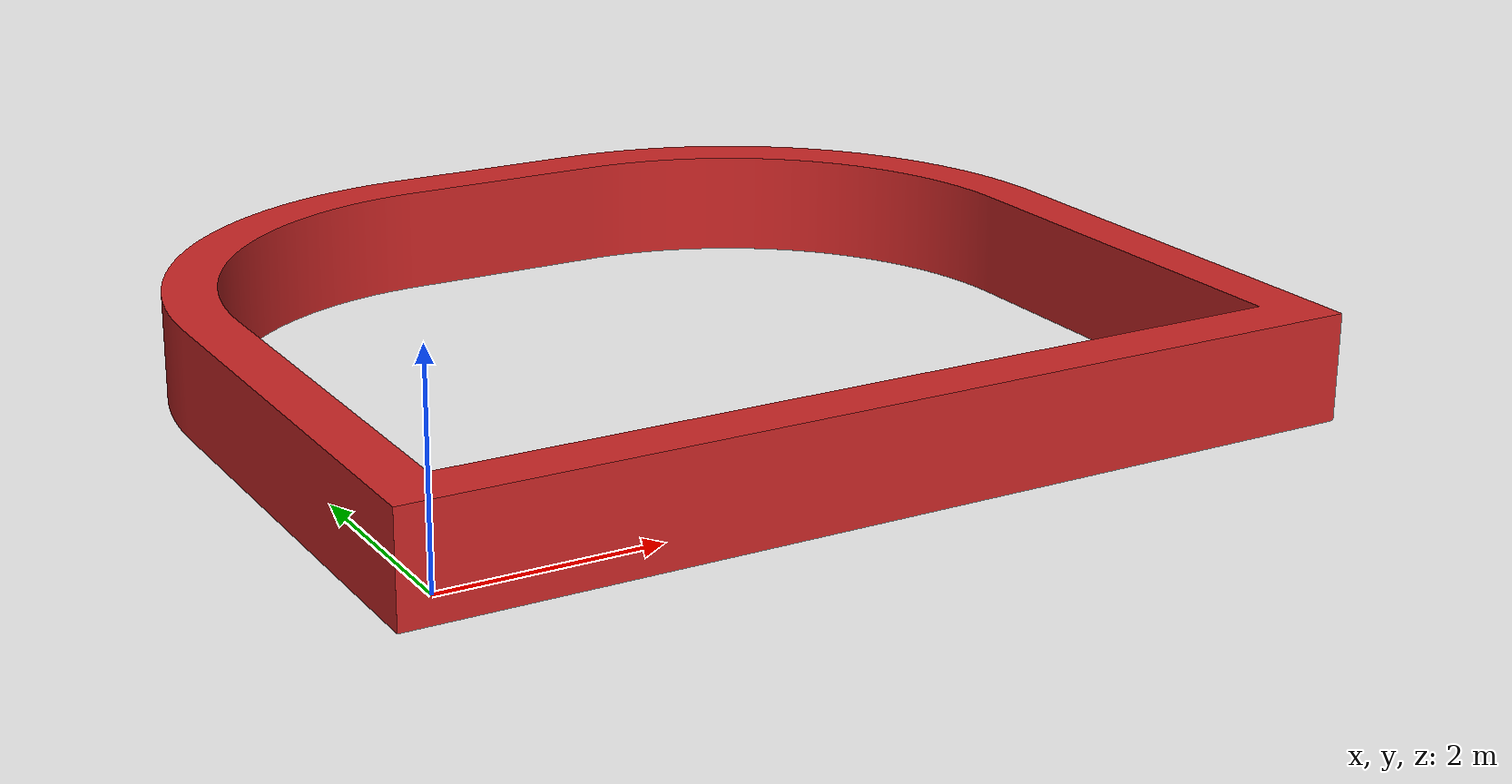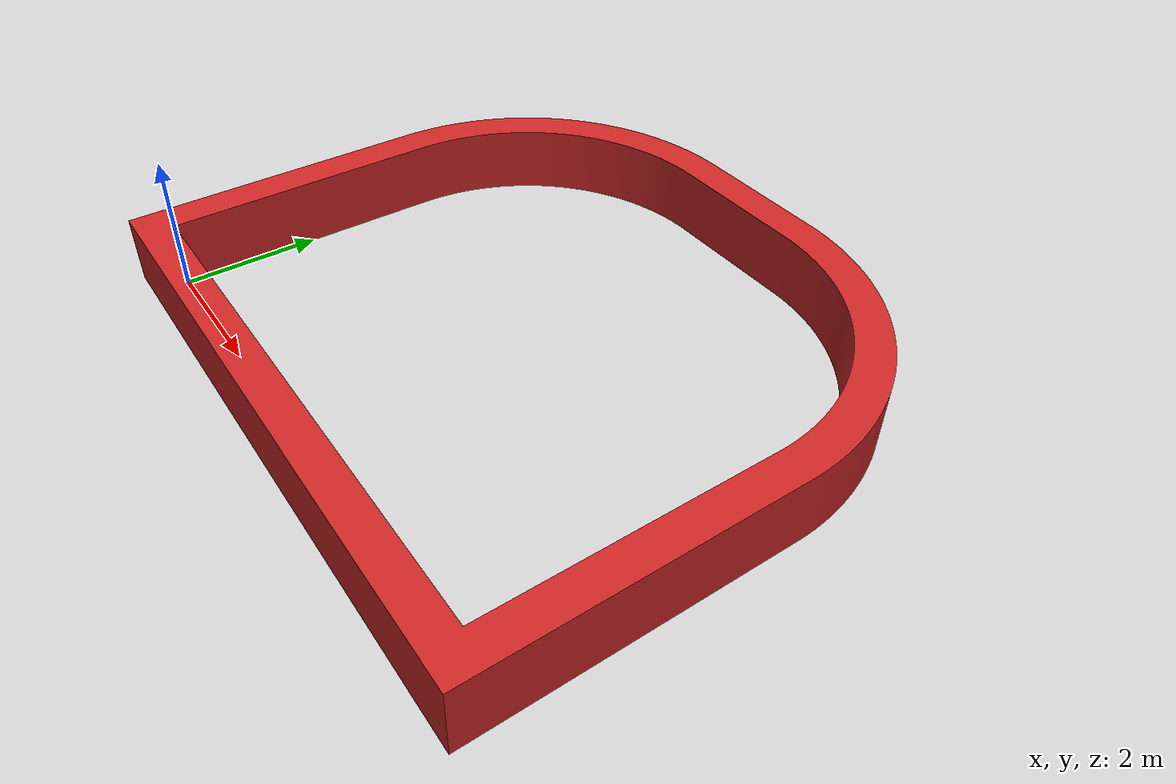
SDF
<sdf version='1.4'>
    <model name='D_shape'>
      <static>1</static>
	<link name='symbol'>

        <collision name='body'>
        <pose>0 0 0 0 0 0</pose>
        <geometry>
          <mesh>
            <uri>model://D_shape_hollow/meshes/d_shape_hollow.dae</uri>
            <scale>1 1 1</scale>
          </mesh>
        </geometry>
        <max_contacts>10</max_contacts>
        <surface>
          <bounce/>
          <friction>
            <ode/>
          </friction>
          <contact>
            <ode/>
          </contact>
        </surface>
      </collision>

      <visual name='body'>
        <pose>0 0 0 0 0 0</pose>
        <geometry>
          <mesh>
            <uri>model://D_shape_hollow/meshes/d_shape_hollow.dae</uri>
            <scale>1 1 1</scale>
          </mesh>
        </geometry>
        <material>
          <script>
            <uri>file://media/materials/scripts/gazebo.material</uri>
            <name>Gazebo/Red</name>
          </script>
        </material>
      </visual>
    </link>
  </model>
</sdf>
